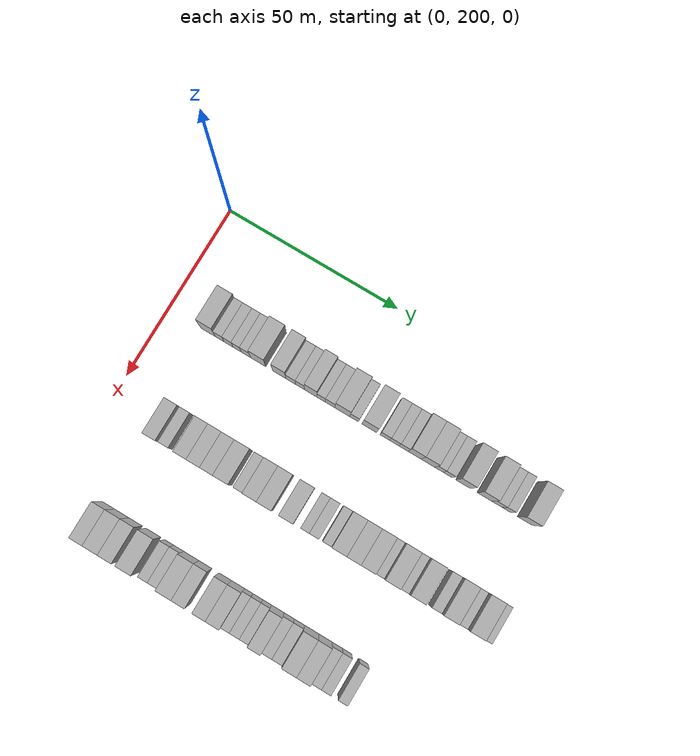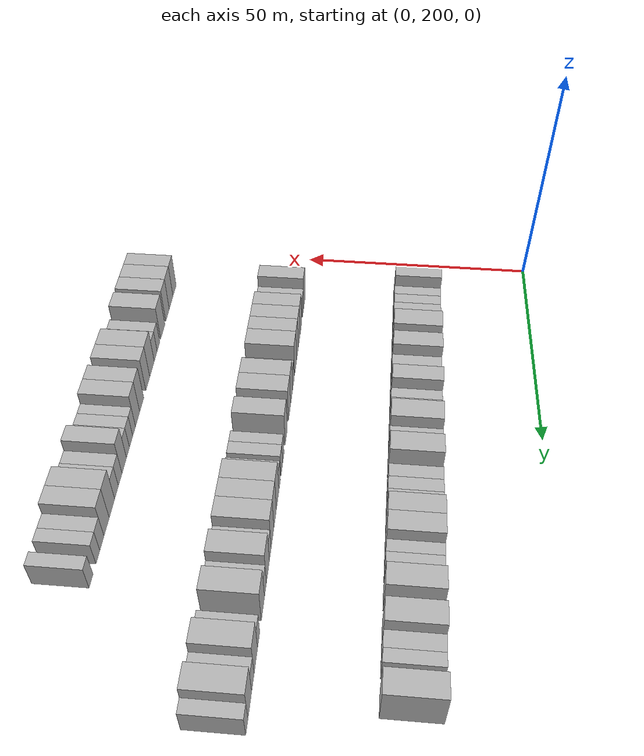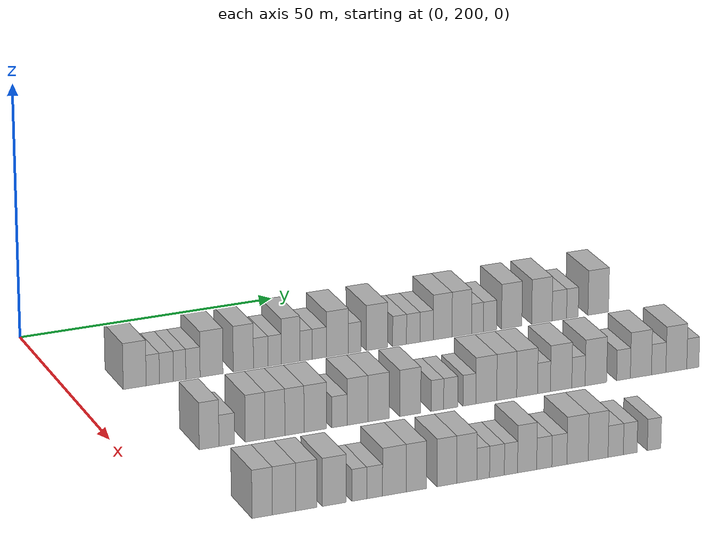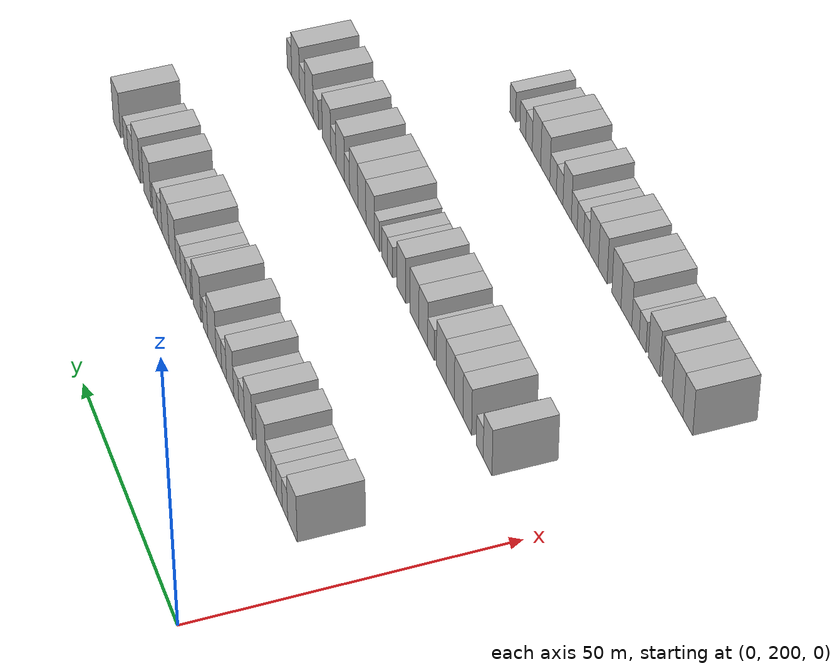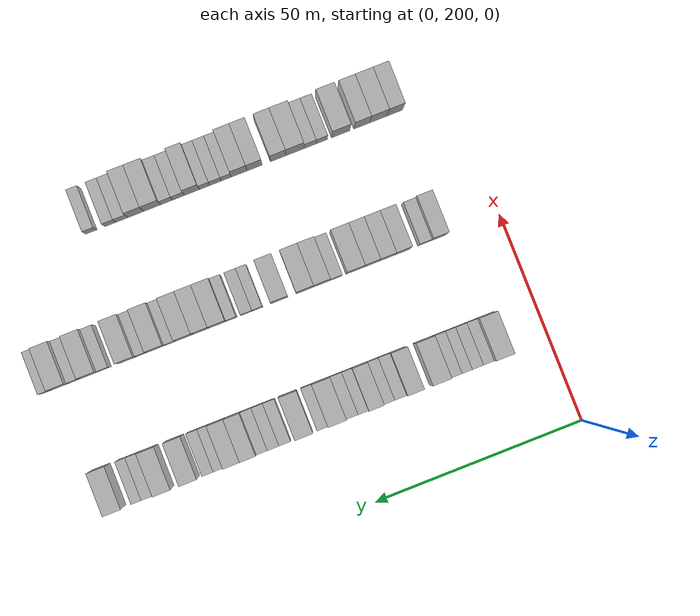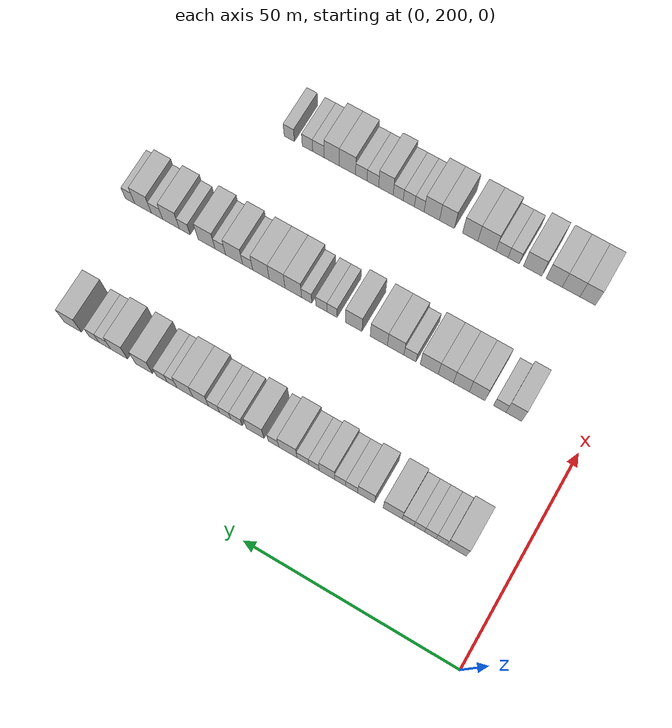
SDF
<sdf version="1.6">
 <world name="default">
  <model name="building_171">
   <static>1</static>
   <pose>25.0000 211.8962 0 0.000000 0.000000 0.000000</pose>
   <link name="link">
    <pose>0 0 4.50 0 0 0</pose>
    <collision name="collision"><geometry><box><size>10.0000 4.4105 9.0000</size></box></geometry></collision>
    <visual name="visual">
     <cast_shadows>0</cast_shadows>
     <geometry><box><size>10.0000 4.4105 9.0000</size></box></geometry>
     <material>
      <script>
       <uri>model://HANNAS_wall/materials/scripts</uri>
       <uri>model://HANNAS_wall/materials/textures</uri>
       <name>vrc/HANNAS_wall</name>
      </script>
     </material>
    </visual>
   </link>
  </model>
  <model name="building_172">
   <static>1</static>
   <pose>25.0000 215.3788 0 0.000000 0.000000 0.000000</pose>
   <link name="link">
    <pose>0 0 3.00 0 0 0</pose>
    <collision name="collision"><geometry><box><size>10.0000 2.5546 6.0000</size></box></geometry></collision>
    <visual name="visual">
     <cast_shadows>0</cast_shadows>
     <geometry><box><size>10.0000 2.5546 6.0000</size></box></geometry>
     <material>
      <script>
       <uri>model://HANNAS_wall/materials/scripts</uri>
       <uri>model://HANNAS_wall/materials/textures</uri>
       <name>vrc/HANNAS_wall</name>
      </script>
     </material>
    </visual>
   </link>
  </model>
  <model name="building_173">
   <static>1</static>
   <pose>25.0000 217.9968 0 0.000000 0.000000 0.000000</pose>
   <link name="link">
    <pose>0 0 3.00 0 0 0</pose>
    <collision name="collision"><geometry><box><size>10.0000 2.6815 6.0000</size></box></geometry></collision>
    <visual name="visual">
     <cast_shadows>0</cast_shadows>
     <geometry><box><size>10.0000 2.6815 6.0000</size></box></geometry>
     <material>
      <script>
       <uri>model://HANNAS_wall/materials/scripts</uri>
       <uri>model://HANNAS_wall/materials/textures</uri>
       <name>vrc/HANNAS_wall</name>
      </script>
     </material>
    </visual>
   </link>
  </model>
  <model name="building_174">
   <static>1</static>
   <pose>25.0000 220.5450 0 0.000000 0.000000 0.000000</pose>
   <link name="link">
    <pose>0 0 3.00 0 0 0</pose>
    <collision name="collision"><geometry><box><size>10.0000 2.4149 6.0000</size></box></geometry></collision>
    <visual name="visual">
     <cast_shadows>0</cast_shadows>
     <geometry><box><size>10.0000 2.4149 6.0000</size></box></geometry>
     <material>
      <script>
       <uri>model://HANNAS_wall/materials/scripts</uri>
       <uri>model://HANNAS_wall/materials/textures</uri>
       <name>vrc/HANNAS_wall</name>
      </script>
     </material>
    </visual>
   </link>
  </model>
  <model name="building_175">
   <static>1</static>
   <pose>25.0000 223.1354 0 0.000000 0.000000 0.000000</pose>
   <link name="link">
    <pose>0 0 3.00 0 0 0</pose>
    <collision name="collision"><geometry><box><size>10.0000 2.7659 6.0000</size></box></geometry></collision>
    <visual name="visual">
     <cast_shadows>0</cast_shadows>
     <geometry><box><size>10.0000 2.7659 6.0000</size></box></geometry>
     <material>
      <script>
       <uri>model://HANNAS_wall/materials/scripts</uri>
       <uri>model://HANNAS_wall/materials/textures</uri>
       <name>vrc/HANNAS_wall</name>
      </script>
     </material>
    </visual>
   </link>
  </model>
  <model name="building_176">
   <static>1</static>
   <pose>25.0000 226.7393 0 0.000000 0.000000 0.000000</pose>
   <link name="link">
    <pose>0 0 4.50 0 0 0</pose>
    <collision name="collision"><geometry><box><size>10.0000 4.4419 9.0000</size></box></geometry></collision>
    <visual name="visual">
     <cast_shadows>0</cast_shadows>
     <geometry><box><size>10.0000 4.4419 9.0000</size></box></geometry>
     <material>
      <script>
       <uri>model://HANNAS_wall/materials/scripts</uri>
       <uri>model://HANNAS_wall/materials/textures</uri>
       <name>vrc/HANNAS_wall</name>
      </script>
     </material>
    </visual>
   </link>
  </model>
  <model name="building_177">
   <static>1</static>
   <pose>25.0000 232.9341 0 0.000000 0.000000 0.000000</pose>
   <link name="link">
    <pose>0 0 4.50 0 0 0</pose>
    <collision name="collision"><geometry><box><size>10.0000 3.9477 9.0000</size></box></geometry></collision>
    <visual name="visual">
     <cast_shadows>0</cast_shadows>
     <geometry><box><size>10.0000 3.9477 9.0000</size></box></geometry>
     <material>
      <script>
       <uri>model://HANNAS_wall/materials/scripts</uri>
       <uri>model://HANNAS_wall/materials/textures</uri>
       <name>vrc/HANNAS_wall</name>
      </script>
     </material>
    </visual>
   </link>
  </model>
  <model name="building_178">
   <static>1</static>
   <pose>25.0000 236.3280 0 0.000000 0.000000 0.000000</pose>
   <link name="link">
    <pose>0 0 3.00 0 0 0</pose>
    <collision name="collision"><geometry><box><size>10.0000 2.8402 6.0000</size></box></geometry></collision>
    <visual name="visual">
     <cast_shadows>0</cast_shadows>
     <geometry><box><size>10.0000 2.8402 6.0000</size></box></geometry>
     <material>
      <script>
       <uri>model://HANNAS_wall/materials/scripts</uri>
       <uri>model://HANNAS_wall/materials/textures</uri>
       <name>vrc/HANNAS_wall</name>
      </script>
     </material>
    </visual>
   </link>
  </model>
  <model name="building_179">
   <static>1</static>
   <pose>25.0000 239.0620 0 0.000000 0.000000 0.000000</pose>
   <link name="link">
    <pose>0 0 3.00 0 0 0</pose>
    <collision name="collision"><geometry><box><size>10.0000 2.6278 6.0000</size></box></geometry></collision>
    <visual name="visual">
     <cast_shadows>0</cast_shadows>
     <geometry><box><size>10.0000 2.6278 6.0000</size></box></geometry>
     <material>
      <script>
       <uri>model://HANNAS_wall/materials/scripts</uri>
       <uri>model://HANNAS_wall/materials/textures</uri>
       <name>vrc/HANNAS_wall</name>
      </script>
     </material>
    </visual>
   </link>
  </model>
  <model name="building_180">
   <static>1</static>
   <pose>25.0000 242.1905 0 0.000000 0.000000 0.000000</pose>
   <link name="link">
    <pose>0 0 4.50 0 0 0</pose>
    <collision name="collision"><geometry><box><size>10.0000 3.6293 9.0000</size></box></geometry></collision>
    <visual name="visual">
     <cast_shadows>0</cast_shadows>
     <geometry><box><size>10.0000 3.6293 9.0000</size></box></geometry>
     <material>
      <script>
       <uri>model://HANNAS_wall/materials/scripts</uri>
       <uri>model://HANNAS_wall/materials/textures</uri>
       <name>vrc/HANNAS_wall</name>
      </script>
     </material>
    </visual>
   </link>
  </model>
  <model name="building_181">
   <static>1</static>
   <pose>25.0000 245.2287 0 0.000000 0.000000 0.000000</pose>
   <link name="link">
    <pose>0 0 3.00 0 0 0</pose>
    <collision name="collision"><geometry><box><size>10.0000 2.4471 6.0000</size></box></geometry></collision>
    <visual name="visual">
     <cast_shadows>0</cast_shadows>
     <geometry><box><size>10.0000 2.4471 6.0000</size></box></geometry>
     <material>
      <script>
       <uri>model://HANNAS_wall/materials/scripts</uri>
       <uri>model://HANNAS_wall/materials/textures</uri>
       <name>vrc/HANNAS_wall</name>
      </script>
     </material>
    </visual>
   </link>
  </model>
  <model name="building_182">
   <static>1</static>
   <pose>25.0000 247.8614 0 0.000000 0.000000 0.000000</pose>
   <link name="link">
    <pose>0 0 3.00 0 0 0</pose>
    <collision name="collision"><geometry><box><size>10.0000 2.8183 6.0000</size></box></geometry></collision>
    <visual name="visual">
     <cast_shadows>0</cast_shadows>
     <geometry><box><size>10.0000 2.8183 6.0000</size></box></geometry>
     <material>
      <script>
       <uri>model://HANNAS_wall/materials/scripts</uri>
       <uri>model://HANNAS_wall/materials/textures</uri>
       <name>vrc/HANNAS_wall</name>
      </script>
     </material>
    </visual>
   </link>
  </model>
  <model name="building_183">
   <static>1</static>
   <pose>25.0000 251.4510 0 0.000000 0.000000 0.000000</pose>
   <link name="link">
    <pose>0 0 4.50 0 0 0</pose>
    <collision name="collision"><geometry><box><size>10.0000 4.3609 9.0000</size></box></geometry></collision>
    <visual name="visual">
     <cast_shadows>0</cast_shadows>
     <geometry><box><size>10.0000 4.3609 9.0000</size></box></geometry>
     <material>
      <script>
       <uri>model://HANNAS_wall/materials/scripts</uri>
       <uri>model://HANNAS_wall/materials/textures</uri>
       <name>vrc/HANNAS_wall</name>
      </script>
     </material>
    </visual>
   </link>
  </model>
  <model name="building_184">
   <static>1</static>
   <pose>25.0000 254.9037 0 0.000000 0.000000 0.000000</pose>
   <link name="link">
    <pose>0 0 3.00 0 0 0</pose>
    <collision name="collision"><geometry><box><size>10.0000 2.5445 6.0000</size></box></geometry></collision>
    <visual name="visual">
     <cast_shadows>0</cast_shadows>
     <geometry><box><size>10.0000 2.5445 6.0000</size></box></geometry>
     <material>
      <script>
       <uri>model://HANNAS_wall/materials/scripts</uri>
       <uri>model://HANNAS_wall/materials/textures</uri>
       <name>vrc/HANNAS_wall</name>
      </script>
     </material>
    </visual>
   </link>
  </model>
  <model name="building_185">
   <static>1</static>
   <pose>25.0000 259.3108 0 0.000000 0.000000 0.000000</pose>
   <link name="link">
    <pose>0 0 4.50 0 0 0</pose>
    <collision name="collision"><geometry><box><size>10.0000 4.2695 9.0000</size></box></geometry></collision>
    <visual name="visual">
     <cast_shadows>0</cast_shadows>
     <geometry><box><size>10.0000 4.2695 9.0000</size></box></geometry>
     <material>
      <script>
       <uri>model://HANNAS_wall/materials/scripts</uri>
       <uri>model://HANNAS_wall/materials/textures</uri>
       <name>vrc/HANNAS_wall</name>
      </script>
     </material>
    </visual>
   </link>
  </model>
  <model name="building_186">
   <static>1</static>
   <pose>25.0000 263.8304 0 0.000000 0.000000 0.000000</pose>
   <link name="link">
    <pose>0 0 3.00 0 0 0</pose>
    <collision name="collision"><geometry><box><size>10.0000 2.7698 6.0000</size></box></geometry></collision>
    <visual name="visual">
     <cast_shadows>0</cast_shadows>
     <geometry><box><size>10.0000 2.7698 6.0000</size></box></geometry>
     <material>
      <script>
       <uri>model://HANNAS_wall/materials/scripts</uri>
       <uri>model://HANNAS_wall/materials/textures</uri>
       <name>vrc/HANNAS_wall</name>
      </script>
     </material>
    </visual>
   </link>
  </model>
  <model name="building_187">
   <static>1</static>
   <pose>25.0000 266.5804 0 0.000000 0.000000 0.000000</pose>
   <link name="link">
    <pose>0 0 3.00 0 0 0</pose>
    <collision name="collision"><geometry><box><size>10.0000 2.7300 6.0000</size></box></geometry></collision>
    <visual name="visual">
     <cast_shadows>0</cast_shadows>
     <geometry><box><size>10.0000 2.7300 6.0000</size></box></geometry>
     <material>
      <script>
       <uri>model://HANNAS_wall/materials/scripts</uri>
       <uri>model://HANNAS_wall/materials/textures</uri>
       <name>vrc/HANNAS_wall</name>
      </script>
     </material>
    </visual>
   </link>
  </model>
  <model name="building_188">
   <static>1</static>
   <pose>25.0000 269.2711 0 0.000000 0.000000 0.000000</pose>
   <link name="link">
    <pose>0 0 3.00 0 0 0</pose>
    <collision name="collision"><geometry><box><size>10.0000 2.6513 6.0000</size></box></geometry></collision>
    <visual name="visual">
     <cast_shadows>0</cast_shadows>
     <geometry><box><size>10.0000 2.6513 6.0000</size></box></geometry>
     <material>
      <script>
       <uri>model://HANNAS_wall/materials/scripts</uri>
       <uri>model://HANNAS_wall/materials/textures</uri>
       <name>vrc/HANNAS_wall</name>
      </script>
     </material>
    </visual>
   </link>
  </model>
  <model name="building_189">
   <static>1</static>
   <pose>25.0000 272.4869 0 0.000000 0.000000 0.000000</pose>
   <link name="link">
    <pose>0 0 4.50 0 0 0</pose>
    <collision name="collision"><geometry><box><size>10.0000 3.7804 9.0000</size></box></geometry></collision>
    <visual name="visual">
     <cast_shadows>0</cast_shadows>
     <geometry><box><size>10.0000 3.7804 9.0000</size></box></geometry>
     <material>
      <script>
       <uri>model://HANNAS_wall/materials/scripts</uri>
       <uri>model://HANNAS_wall/materials/textures</uri>
       <name>vrc/HANNAS_wall</name>
      </script>
     </material>
    </visual>
   </link>
  </model>
  <model name="building_190">
   <static>1</static>
   <pose>25.0000 276.3484 0 0.000000 0.000000 0.000000</pose>
   <link name="link">
    <pose>0 0 4.50 0 0 0</pose>
    <collision name="collision"><geometry><box><size>10.0000 3.9427 9.0000</size></box></geometry></collision>
    <visual name="visual">
     <cast_shadows>0</cast_shadows>
     <geometry><box><size>10.0000 3.9427 9.0000</size></box></geometry>
     <material>
      <script>
       <uri>model://HANNAS_wall/materials/scripts</uri>
       <uri>model://HANNAS_wall/materials/textures</uri>
       <name>vrc/HANNAS_wall</name>
      </script>
     </material>
    </visual>
   </link>
  </model>
  <model name="building_191">
   <static>1</static>
   <pose>25.0000 279.5289 0 0.000000 0.000000 0.000000</pose>
   <link name="link">
    <pose>0 0 3.00 0 0 0</pose>
    <collision name="collision"><geometry><box><size>10.0000 2.4182 6.0000</size></box></geometry></collision>
    <visual name="visual">
     <cast_shadows>0</cast_shadows>
     <geometry><box><size>10.0000 2.4182 6.0000</size></box></geometry>
     <material>
      <script>
       <uri>model://HANNAS_wall/materials/scripts</uri>
       <uri>model://HANNAS_wall/materials/textures</uri>
       <name>vrc/HANNAS_wall</name>
      </script>
     </material>
    </visual>
   </link>
  </model>
  <model name="building_192">
   <static>1</static>
   <pose>25.0000 282.0740 0 0.000000 0.000000 0.000000</pose>
   <link name="link">
    <pose>0 0 3.00 0 0 0</pose>
    <collision name="collision"><geometry><box><size>10.0000 2.6720 6.0000</size></box></geometry></collision>
    <visual name="visual">
     <cast_shadows>0</cast_shadows>
     <geometry><box><size>10.0000 2.6720 6.0000</size></box></geometry>
     <material>
      <script>
       <uri>model://HANNAS_wall/materials/scripts</uri>
       <uri>model://HANNAS_wall/materials/textures</uri>
       <name>vrc/HANNAS_wall</name>
      </script>
     </material>
    </visual>
   </link>
  </model>
  <model name="building_193">
   <static>1</static>
   <pose>25.0000 286.4903 0 0.000000 0.000000 0.000000</pose>
   <link name="link">
    <pose>0 0 4.50 0 0 0</pose>
    <collision name="collision"><geometry><box><size>10.0000 4.1606 9.0000</size></box></geometry></collision>
    <visual name="visual">
     <cast_shadows>0</cast_shadows>
     <geometry><box><size>10.0000 4.1606 9.0000</size></box></geometry>
     <material>
      <script>
       <uri>model://HANNAS_wall/materials/scripts</uri>
       <uri>model://HANNAS_wall/materials/textures</uri>
       <name>vrc/HANNAS_wall</name>
      </script>
     </material>
    </visual>
   </link>
  </model>
  <model name="building_194">
   <static>1</static>
   <pose>25.0000 292.6622 0 0.000000 0.000000 0.000000</pose>
   <link name="link">
    <pose>0 0 4.50 0 0 0</pose>
    <collision name="collision"><geometry><box><size>10.0000 4.1830 9.0000</size></box></geometry></collision>
    <visual name="visual">
     <cast_shadows>0</cast_shadows>
     <geometry><box><size>10.0000 4.1830 9.0000</size></box></geometry>
     <material>
      <script>
       <uri>model://HANNAS_wall/materials/scripts</uri>
       <uri>model://HANNAS_wall/materials/textures</uri>
       <name>vrc/HANNAS_wall</name>
      </script>
     </material>
    </visual>
   </link>
  </model>
  <model name="building_195">
   <static>1</static>
   <pose>25.0000 296.2423 0 0.000000 0.000000 0.000000</pose>
   <link name="link">
    <pose>0 0 3.00 0 0 0</pose>
    <collision name="collision"><geometry><box><size>10.0000 2.9772 6.0000</size></box></geometry></collision>
    <visual name="visual">
     <cast_shadows>0</cast_shadows>
     <geometry><box><size>10.0000 2.9772 6.0000</size></box></geometry>
     <material>
      <script>
       <uri>model://HANNAS_wall/materials/scripts</uri>
       <uri>model://HANNAS_wall/materials/textures</uri>
       <name>vrc/HANNAS_wall</name>
      </script>
     </material>
    </visual>
   </link>
  </model>
  <model name="building_196">
   <static>1</static>
   <pose>25.0000 298.9357 0 0.000000 0.000000 0.000000</pose>
   <link name="link">
    <pose>0 0 3.00 0 0 0</pose>
    <collision name="collision"><geometry><box><size>10.0000 2.4096 6.0000</size></box></geometry></collision>
    <visual name="visual">
     <cast_shadows>0</cast_shadows>
     <geometry><box><size>10.0000 2.4096 6.0000</size></box></geometry>
     <material>
      <script>
       <uri>model://HANNAS_wall/materials/scripts</uri>
       <uri>model://HANNAS_wall/materials/textures</uri>
       <name>vrc/HANNAS_wall</name>
      </script>
     </material>
    </visual>
   </link>
  </model>
  <model name="building_197">
   <static>1</static>
   <pose>25.0000 304.2707 0 0.000000 0.000000 0.000000</pose>
   <link name="link">
    <pose>0 0 4.50 0 0 0</pose>
    <collision name="collision"><geometry><box><size>10.0000 4.2606 9.0000</size></box></geometry></collision>
    <visual name="visual">
     <cast_shadows>0</cast_shadows>
     <geometry><box><size>10.0000 4.2606 9.0000</size></box></geometry>
     <material>
      <script>
       <uri>model://HANNAS_wall/materials/scripts</uri>
       <uri>model://HANNAS_wall/materials/textures</uri>
       <name>vrc/HANNAS_wall</name>
      </script>
     </material>
    </visual>
   </link>
  </model>
  <model name="building_414">
   <static>1</static>
   <pose>55.0000 215.0504 0 0.000000 0.000000 0.000000</pose>
   <link name="link">
    <pose>0 0 4.50 0 0 0</pose>
    <collision name="collision"><geometry><box><size>10.0000 3.7076 9.0000</size></box></geometry></collision>
    <visual name="visual">
     <cast_shadows>0</cast_shadows>
     <geometry><box><size>10.0000 3.7076 9.0000</size></box></geometry>
     <material>
      <script>
       <uri>model://HANNAS_wall/materials/scripts</uri>
       <uri>model://HANNAS_wall/materials/textures</uri>
       <name>vrc/HANNAS_wall</name>
      </script>
     </material>
    </visual>
   </link>
  </model>
  <model name="building_415">
   <static>1</static>
   <pose>55.0000 218.3742 0 0.000000 0.000000 0.000000</pose>
   <link name="link">
    <pose>0 0 3.00 0 0 0</pose>
    <collision name="collision"><geometry><box><size>10.0000 2.9399 6.0000</size></box></geometry></collision>
    <visual name="visual">
     <cast_shadows>0</cast_shadows>
     <geometry><box><size>10.0000 2.9399 6.0000</size></box></geometry>
     <material>
      <script>
       <uri>model://HANNAS_wall/materials/scripts</uri>
       <uri>model://HANNAS_wall/materials/textures</uri>
       <name>vrc/HANNAS_wall</name>
      </script>
     </material>
    </visual>
   </link>
  </model>
  <model name="building_416">
   <static>1</static>
   <pose>55.0000 223.7112 0 0.000000 0.000000 0.000000</pose>
   <link name="link">
    <pose>0 0 4.50 0 0 0</pose>
    <collision name="collision"><geometry><box><size>10.0000 3.7341 9.0000</size></box></geometry></collision>
    <visual name="visual">
     <cast_shadows>0</cast_shadows>
     <geometry><box><size>10.0000 3.7341 9.0000</size></box></geometry>
     <material>
      <script>
       <uri>model://HANNAS_wall/materials/scripts</uri>
       <uri>model://HANNAS_wall/materials/textures</uri>
       <name>vrc/HANNAS_wall</name>
      </script>
     </material>
    </visual>
   </link>
  </model>
  <model name="building_417">
   <static>1</static>
   <pose>55.0000 227.4649 0 0.000000 0.000000 0.000000</pose>
   <link name="link">
    <pose>0 0 4.50 0 0 0</pose>
    <collision name="collision"><geometry><box><size>10.0000 3.7732 9.0000</size></box></geometry></collision>
    <visual name="visual">
     <cast_shadows>0</cast_shadows>
     <geometry><box><size>10.0000 3.7732 9.0000</size></box></geometry>
     <material>
      <script>
       <uri>model://HANNAS_wall/materials/scripts</uri>
       <uri>model://HANNAS_wall/materials/textures</uri>
       <name>vrc/HANNAS_wall</name>
      </script>
     </material>
    </visual>
   </link>
  </model>
  <model name="building_418">
   <static>1</static>
   <pose>55.0000 231.1701 0 0.000000 0.000000 0.000000</pose>
   <link name="link">
    <pose>0 0 4.50 0 0 0</pose>
    <collision name="collision"><geometry><box><size>10.0000 3.6373 9.0000</size></box></geometry></collision>
    <visual name="visual">
     <cast_shadows>0</cast_shadows>
     <geometry><box><size>10.0000 3.6373 9.0000</size></box></geometry>
     <material>
      <script>
       <uri>model://HANNAS_wall/materials/scripts</uri>
       <uri>model://HANNAS_wall/materials/textures</uri>
       <name>vrc/HANNAS_wall</name>
      </script>
     </material>
    </visual>
   </link>
  </model>
  <model name="building_419">
   <static>1</static>
   <pose>55.0000 235.1419 0 0.000000 0.000000 0.000000</pose>
   <link name="link">
    <pose>0 0 4.50 0 0 0</pose>
    <collision name="collision"><geometry><box><size>10.0000 4.3064 9.0000</size></box></geometry></collision>
    <visual name="visual">
     <cast_shadows>0</cast_shadows>
     <geometry><box><size>10.0000 4.3064 9.0000</size></box></geometry>
     <material>
      <script>
       <uri>model://HANNAS_wall/materials/scripts</uri>
       <uri>model://HANNAS_wall/materials/textures</uri>
       <name>vrc/HANNAS_wall</name>
      </script>
     </material>
    </visual>
   </link>
  </model>
  <model name="building_420">
   <static>1</static>
   <pose>55.0000 239.7561 0 0.000000 0.000000 0.000000</pose>
   <link name="link">
    <pose>0 0 3.00 0 0 0</pose>
    <collision name="collision"><geometry><box><size>10.0000 2.9219 6.0000</size></box></geometry></collision>
    <visual name="visual">
     <cast_shadows>0</cast_shadows>
     <geometry><box><size>10.0000 2.9219 6.0000</size></box></geometry>
     <material>
      <script>
       <uri>model://HANNAS_wall/materials/scripts</uri>
       <uri>model://HANNAS_wall/materials/textures</uri>
       <name>vrc/HANNAS_wall</name>
      </script>
     </material>
    </visual>
   </link>
  </model>
  <model name="building_421">
   <static>1</static>
   <pose>55.0000 243.2069 0 0.000000 0.000000 0.000000</pose>
   <link name="link">
    <pose>0 0 4.50 0 0 0</pose>
    <collision name="collision"><geometry><box><size>10.0000 3.9797 9.0000</size></box></geometry></collision>
    <visual name="visual">
     <cast_shadows>0</cast_shadows>
     <geometry><box><size>10.0000 3.9797 9.0000</size></box></geometry>
     <material>
      <script>
       <uri>model://HANNAS_wall/materials/scripts</uri>
       <uri>model://HANNAS_wall/materials/textures</uri>
       <name>vrc/HANNAS_wall</name>
      </script>
     </material>
    </visual>
   </link>
  </model>
  <model name="building_422">
   <static>1</static>
   <pose>55.0000 247.2748 0 0.000000 0.000000 0.000000</pose>
   <link name="link">
    <pose>0 0 4.50 0 0 0</pose>
    <collision name="collision"><geometry><box><size>10.0000 4.1562 9.0000</size></box></geometry></collision>
    <visual name="visual">
     <cast_shadows>0</cast_shadows>
     <geometry><box><size>10.0000 4.1562 9.0000</size></box></geometry>
     <material>
      <script>
       <uri>model://HANNAS_wall/materials/scripts</uri>
       <uri>model://HANNAS_wall/materials/textures</uri>
       <name>vrc/HANNAS_wall</name>
      </script>
     </material>
    </visual>
   </link>
  </model>
  <model name="building_423">
   <static>1</static>
   <pose>55.0000 253.3871 0 0.000000 0.000000 0.000000</pose>
   <link name="link">
    <pose>0 0 4.50 0 0 0</pose>
    <collision name="collision"><geometry><box><size>10.0000 4.0684 9.0000</size></box></geometry></collision>
    <visual name="visual">
     <cast_shadows>0</cast_shadows>
     <geometry><box><size>10.0000 4.0684 9.0000</size></box></geometry>
     <material>
      <script>
       <uri>model://HANNAS_wall/materials/scripts</uri>
       <uri>model://HANNAS_wall/materials/textures</uri>
       <name>vrc/HANNAS_wall</name>
      </script>
     </material>
    </visual>
   </link>
  </model>
  <model name="building_424">
   <static>1</static>
   <pose>55.0000 258.6479 0 0.000000 0.000000 0.000000</pose>
   <link name="link">
    <pose>0 0 3.00 0 0 0</pose>
    <collision name="collision"><geometry><box><size>10.0000 2.4533 6.0000</size></box></geometry></collision>
    <visual name="visual">
     <cast_shadows>0</cast_shadows>
     <geometry><box><size>10.0000 2.4533 6.0000</size></box></geometry>
     <material>
      <script>
       <uri>model://HANNAS_wall/materials/scripts</uri>
       <uri>model://HANNAS_wall/materials/textures</uri>
       <name>vrc/HANNAS_wall</name>
      </script>
     </material>
    </visual>
   </link>
  </model>
  <model name="building_425">
   <static>1</static>
   <pose>55.0000 261.2574 0 0.000000 0.000000 0.000000</pose>
   <link name="link">
    <pose>0 0 3.00 0 0 0</pose>
    <collision name="collision"><geometry><box><size>10.0000 2.7658 6.0000</size></box></geometry></collision>
    <visual name="visual">
     <cast_shadows>0</cast_shadows>
     <geometry><box><size>10.0000 2.7658 6.0000</size></box></geometry>
     <material>
      <script>
       <uri>model://HANNAS_wall/materials/scripts</uri>
       <uri>model://HANNAS_wall/materials/textures</uri>
       <name>vrc/HANNAS_wall</name>
      </script>
     </material>
    </visual>
   </link>
  </model>
  <model name="building_426">
   <static>1</static>
   <pose>55.0000 264.8949 0 0.000000 0.000000 0.000000</pose>
   <link name="link">
    <pose>0 0 3.00 0 0 0</pose>
    <collision name="collision"><geometry><box><size>10.0000 2.5090 6.0000</size></box></geometry></collision>
    <visual name="visual">
     <cast_shadows>0</cast_shadows>
     <geometry><box><size>10.0000 2.5090 6.0000</size></box></geometry>
     <material>
      <script>
       <uri>model://HANNAS_wall/materials/scripts</uri>
       <uri>model://HANNAS_wall/materials/textures</uri>
       <name>vrc/HANNAS_wall</name>
      </script>
     </material>
    </visual>
   </link>
  </model>
  <model name="building_427">
   <static>1</static>
   <pose>55.0000 268.1947 0 0.000000 0.000000 0.000000</pose>
   <link name="link">
    <pose>0 0 4.50 0 0 0</pose>
    <collision name="collision"><geometry><box><size>10.0000 4.0907 9.0000</size></box></geometry></collision>
    <visual name="visual">
     <cast_shadows>0</cast_shadows>
     <geometry><box><size>10.0000 4.0907 9.0000</size></box></geometry>
     <material>
      <script>
       <uri>model://HANNAS_wall/materials/scripts</uri>
       <uri>model://HANNAS_wall/materials/textures</uri>
       <name>vrc/HANNAS_wall</name>
      </script>
     </material>
    </visual>
   </link>
  </model>
  <model name="building_428">
   <static>1</static>
   <pose>55.0000 272.2036 0 0.000000 0.000000 0.000000</pose>
   <link name="link">
    <pose>0 0 4.50 0 0 0</pose>
    <collision name="collision"><geometry><box><size>10.0000 3.9271 9.0000</size></box></geometry></collision>
    <visual name="visual">
     <cast_shadows>0</cast_shadows>
     <geometry><box><size>10.0000 3.9271 9.0000</size></box></geometry>
     <material>
      <script>
       <uri>model://HANNAS_wall/materials/scripts</uri>
       <uri>model://HANNAS_wall/materials/textures</uri>
       <name>vrc/HANNAS_wall</name>
      </script>
     </material>
    </visual>
   </link>
  </model>
  <model name="building_429">
   <static>1</static>
   <pose>55.0000 276.2278 0 0.000000 0.000000 0.000000</pose>
   <link name="link">
    <pose>0 0 4.50 0 0 0</pose>
    <collision name="collision"><geometry><box><size>10.0000 4.1213 9.0000</size></box></geometry></collision>
    <visual name="visual">
     <cast_shadows>0</cast_shadows>
     <geometry><box><size>10.0000 4.1213 9.0000</size></box></geometry>
     <material>
      <script>
       <uri>model://HANNAS_wall/materials/scripts</uri>
       <uri>model://HANNAS_wall/materials/textures</uri>
       <name>vrc/HANNAS_wall</name>
      </script>
     </material>
    </visual>
   </link>
  </model>
  <model name="building_430">
   <static>1</static>
   <pose>55.0000 279.5589 0 0.000000 0.000000 0.000000</pose>
   <link name="link">
    <pose>0 0 3.00 0 0 0</pose>
    <collision name="collision"><geometry><box><size>10.0000 2.5407 6.0000</size></box></geometry></collision>
    <visual name="visual">
     <cast_shadows>0</cast_shadows>
     <geometry><box><size>10.0000 2.5407 6.0000</size></box></geometry>
     <material>
      <script>
       <uri>model://HANNAS_wall/materials/scripts</uri>
       <uri>model://HANNAS_wall/materials/textures</uri>
       <name>vrc/HANNAS_wall</name>
      </script>
     </material>
    </visual>
   </link>
  </model>
  <model name="building_431">
   <static>1</static>
   <pose>55.0000 282.9599 0 0.000000 0.000000 0.000000</pose>
   <link name="link">
    <pose>0 0 4.50 0 0 0</pose>
    <collision name="collision"><geometry><box><size>10.0000 4.2614 9.0000</size></box></geometry></collision>
    <visual name="visual">
     <cast_shadows>0</cast_shadows>
     <geometry><box><size>10.0000 4.2614 9.0000</size></box></geometry>
     <material>
      <script>
       <uri>model://HANNAS_wall/materials/scripts</uri>
       <uri>model://HANNAS_wall/materials/textures</uri>
       <name>vrc/HANNAS_wall</name>
      </script>
     </material>
    </visual>
   </link>
  </model>
  <model name="building_432">
   <static>1</static>
   <pose>55.0000 286.4134 0 0.000000 0.000000 0.000000</pose>
   <link name="link">
    <pose>0 0 3.00 0 0 0</pose>
    <collision name="collision"><geometry><box><size>10.0000 2.6456 6.0000</size></box></geometry></collision>
    <visual name="visual">
     <cast_shadows>0</cast_shadows>
     <geometry><box><size>10.0000 2.6456 6.0000</size></box></geometry>
     <material>
      <script>
       <uri>model://HANNAS_wall/materials/scripts</uri>
       <uri>model://HANNAS_wall/materials/textures</uri>
       <name>vrc/HANNAS_wall</name>
      </script>
     </material>
    </visual>
   </link>
  </model>
  <model name="building_433">
   <static>1</static>
   <pose>55.0000 289.8872 0 0.000000 0.000000 0.000000</pose>
   <link name="link">
    <pose>0 0 4.50 0 0 0</pose>
    <collision name="collision"><geometry><box><size>10.0000 4.3019 9.0000</size></box></geometry></collision>
    <visual name="visual">
     <cast_shadows>0</cast_shadows>
     <geometry><box><size>10.0000 4.3019 9.0000</size></box></geometry>
     <material>
      <script>
       <uri>model://HANNAS_wall/materials/scripts</uri>
       <uri>model://HANNAS_wall/materials/textures</uri>
       <name>vrc/HANNAS_wall</name>
      </script>
     </material>
    </visual>
   </link>
  </model>
  <model name="building_434">
   <static>1</static>
   <pose>55.0000 295.4110 0 0.000000 0.000000 0.000000</pose>
   <link name="link">
    <pose>0 0 3.00 0 0 0</pose>
    <collision name="collision"><geometry><box><size>10.0000 2.7458 6.0000</size></box></geometry></collision>
    <visual name="visual">
     <cast_shadows>0</cast_shadows>
     <geometry><box><size>10.0000 2.7458 6.0000</size></box></geometry>
     <material>
      <script>
       <uri>model://HANNAS_wall/materials/scripts</uri>
       <uri>model://HANNAS_wall/materials/textures</uri>
       <name>vrc/HANNAS_wall</name>
      </script>
     </material>
    </visual>
   </link>
  </model>
  <model name="building_435">
   <static>1</static>
   <pose>55.0000 298.9033 0 0.000000 0.000000 0.000000</pose>
   <link name="link">
    <pose>0 0 4.50 0 0 0</pose>
    <collision name="collision"><geometry><box><size>10.0000 4.2386 9.0000</size></box></geometry></collision>
    <visual name="visual">
     <cast_shadows>0</cast_shadows>
     <geometry><box><size>10.0000 4.2386 9.0000</size></box></geometry>
     <material>
      <script>
       <uri>model://HANNAS_wall/materials/scripts</uri>
       <uri>model://HANNAS_wall/materials/textures</uri>
       <name>vrc/HANNAS_wall</name>
      </script>
     </material>
    </visual>
   </link>
  </model>
  <model name="building_436">
   <static>1</static>
   <pose>55.0000 302.4772 0 0.000000 0.000000 0.000000</pose>
   <link name="link">
    <pose>0 0 3.00 0 0 0</pose>
    <collision name="collision"><geometry><box><size>10.0000 2.9094 6.0000</size></box></geometry></collision>
    <visual name="visual">
     <cast_shadows>0</cast_shadows>
     <geometry><box><size>10.0000 2.9094 6.0000</size></box></geometry>
     <material>
      <script>
       <uri>model://HANNAS_wall/materials/scripts</uri>
       <uri>model://HANNAS_wall/materials/textures</uri>
       <name>vrc/HANNAS_wall</name>
      </script>
     </material>
    </visual>
   </link>
  </model>
  <model name="building_437">
   <static>1</static>
   <pose>55.0000 306.0453 0 0.000000 0.000000 0.000000</pose>
   <link name="link">
    <pose>0 0 4.50 0 0 0</pose>
    <collision name="collision"><geometry><box><size>10.0000 4.2267 9.0000</size></box></geometry></collision>
    <visual name="visual">
     <cast_shadows>0</cast_shadows>
     <geometry><box><size>10.0000 4.2267 9.0000</size></box></geometry>
     <material>
      <script>
       <uri>model://HANNAS_wall/materials/scripts</uri>
       <uri>model://HANNAS_wall/materials/textures</uri>
       <name>vrc/HANNAS_wall</name>
      </script>
     </material>
    </visual>
   </link>
  </model>
  <model name="building_438">
   <static>1</static>
   <pose>55.0000 309.3876 0 0.000000 0.000000 0.000000</pose>
   <link name="link">
    <pose>0 0 3.00 0 0 0</pose>
    <collision name="collision"><geometry><box><size>10.0000 2.4578 6.0000</size></box></geometry></collision>
    <visual name="visual">
     <cast_shadows>0</cast_shadows>
     <geometry><box><size>10.0000 2.4578 6.0000</size></box></geometry>
     <material>
      <script>
       <uri>model://HANNAS_wall/materials/scripts</uri>
       <uri>model://HANNAS_wall/materials/textures</uri>
       <name>vrc/HANNAS_wall</name>
      </script>
     </material>
    </visual>
   </link>
  </model>
  <model name="building_644">
   <static>1</static>
   <pose>85.0000 213.4947 0 0.000000 0.000000 0.000000</pose>
   <link name="link">
    <pose>0 0 4.50 0 0 0</pose>
    <collision name="collision"><geometry><box><size>10.0000 3.7204 9.0000</size></box></geometry></collision>
    <visual name="visual">
     <cast_shadows>0</cast_shadows>
     <geometry><box><size>10.0000 3.7204 9.0000</size></box></geometry>
     <material>
      <script>
       <uri>model://HANNAS_wall/materials/scripts</uri>
       <uri>model://HANNAS_wall/materials/textures</uri>
       <name>vrc/HANNAS_wall</name>
      </script>
     </material>
    </visual>
   </link>
  </model>
  <model name="building_645">
   <static>1</static>
   <pose>85.0000 217.4750 0 0.000000 0.000000 0.000000</pose>
   <link name="link">
    <pose>0 0 4.50 0 0 0</pose>
    <collision name="collision"><geometry><box><size>10.0000 4.2402 9.0000</size></box></geometry></collision>
    <visual name="visual">
     <cast_shadows>0</cast_shadows>
     <geometry><box><size>10.0000 4.2402 9.0000</size></box></geometry>
     <material>
      <script>
       <uri>model://HANNAS_wall/materials/scripts</uri>
       <uri>model://HANNAS_wall/materials/textures</uri>
       <name>vrc/HANNAS_wall</name>
      </script>
     </material>
    </visual>
   </link>
  </model>
  <model name="building_646">
   <static>1</static>
   <pose>85.0000 221.5497 0 0.000000 0.000000 0.000000</pose>
   <link name="link">
    <pose>0 0 4.50 0 0 0</pose>
    <collision name="collision"><geometry><box><size>10.0000 3.9093 9.0000</size></box></geometry></collision>
    <visual name="visual">
     <cast_shadows>0</cast_shadows>
     <geometry><box><size>10.0000 3.9093 9.0000</size></box></geometry>
     <material>
      <script>
       <uri>model://HANNAS_wall/materials/scripts</uri>
       <uri>model://HANNAS_wall/materials/textures</uri>
       <name>vrc/HANNAS_wall</name>
      </script>
     </material>
    </visual>
   </link>
  </model>
  <model name="building_647">
   <static>1</static>
   <pose>85.0000 226.7252 0 0.000000 0.000000 0.000000</pose>
   <link name="link">
    <pose>0 0 4.50 0 0 0</pose>
    <collision name="collision"><geometry><box><size>10.0000 4.4416 9.0000</size></box></geometry></collision>
    <visual name="visual">
     <cast_shadows>0</cast_shadows>
     <geometry><box><size>10.0000 4.4416 9.0000</size></box></geometry>
     <material>
      <script>
       <uri>model://HANNAS_wall/materials/scripts</uri>
       <uri>model://HANNAS_wall/materials/textures</uri>
       <name>vrc/HANNAS_wall</name>
      </script>
     </material>
    </visual>
   </link>
  </model>
  <model name="building_648">
   <static>1</static>
   <pose>85.0000 231.3195 0 0.000000 0.000000 0.000000</pose>
   <link name="link">
    <pose>0 0 3.00 0 0 0</pose>
    <collision name="collision"><geometry><box><size>10.0000 2.7470 6.0000</size></box></geometry></collision>
    <visual name="visual">
     <cast_shadows>0</cast_shadows>
     <geometry><box><size>10.0000 2.7470 6.0000</size></box></geometry>
     <material>
      <script>
       <uri>model://HANNAS_wall/materials/scripts</uri>
       <uri>model://HANNAS_wall/materials/textures</uri>
       <name>vrc/HANNAS_wall</name>
      </script>
     </material>
    </visual>
   </link>
  </model>
  <model name="building_649">
   <static>1</static>
   <pose>85.0000 234.1684 0 0.000000 0.000000 0.000000</pose>
   <link name="link">
    <pose>0 0 3.00 0 0 0</pose>
    <collision name="collision"><geometry><box><size>10.0000 2.9508 6.0000</size></box></geometry></collision>
    <visual name="visual">
     <cast_shadows>0</cast_shadows>
     <geometry><box><size>10.0000 2.9508 6.0000</size></box></geometry>
     <material>
      <script>
       <uri>model://HANNAS_wall/materials/scripts</uri>
       <uri>model://HANNAS_wall/materials/textures</uri>
       <name>vrc/HANNAS_wall</name>
      </script>
     </material>
    </visual>
   </link>
  </model>
  <model name="building_650">
   <static>1</static>
   <pose>85.0000 237.8527 0 0.000000 0.000000 0.000000</pose>
   <link name="link">
    <pose>0 0 4.50 0 0 0</pose>
    <collision name="collision"><geometry><box><size>10.0000 4.4177 9.0000</size></box></geometry></collision>
    <visual name="visual">
     <cast_shadows>0</cast_shadows>
     <geometry><box><size>10.0000 4.4177 9.0000</size></box></geometry>
     <material>
      <script>
       <uri>model://HANNAS_wall/materials/scripts</uri>
       <uri>model://HANNAS_wall/materials/textures</uri>
       <name>vrc/HANNAS_wall</name>
      </script>
     </material>
    </visual>
   </link>
  </model>
  <model name="building_651">
   <static>1</static>
   <pose>85.0000 241.9374 0 0.000000 0.000000 0.000000</pose>
   <link name="link">
    <pose>0 0 4.50 0 0 0</pose>
    <collision name="collision"><geometry><box><size>10.0000 3.7517 9.0000</size></box></geometry></collision>
    <visual name="visual">
     <cast_shadows>0</cast_shadows>
     <geometry><box><size>10.0000 3.7517 9.0000</size></box></geometry>
     <material>
      <script>
       <uri>model://HANNAS_wall/materials/scripts</uri>
       <uri>model://HANNAS_wall/materials/textures</uri>
       <name>vrc/HANNAS_wall</name>
      </script>
     </material>
    </visual>
   </link>
  </model>
  <model name="building_652">
   <static>1</static>
   <pose>85.0000 247.6548 0 0.000000 0.000000 0.000000</pose>
   <link name="link">
    <pose>0 0 4.50 0 0 0</pose>
    <collision name="collision"><geometry><box><size>10.0000 3.6833 9.0000</size></box></geometry></collision>
    <visual name="visual">
     <cast_shadows>0</cast_shadows>
     <geometry><box><size>10.0000 3.6833 9.0000</size></box></geometry>
     <material>
      <script>
       <uri>model://HANNAS_wall/materials/scripts</uri>
       <uri>model://HANNAS_wall/materials/textures</uri>
       <name>vrc/HANNAS_wall</name>
      </script>
     </material>
    </visual>
   </link>
  </model>
  <model name="building_653">
   <static>1</static>
   <pose>85.0000 251.3975 0 0.000000 0.000000 0.000000</pose>
   <link name="link">
    <pose>0 0 4.50 0 0 0</pose>
    <collision name="collision"><geometry><box><size>10.0000 3.8021 9.0000</size></box></geometry></collision>
    <visual name="visual">
     <cast_shadows>0</cast_shadows>
     <geometry><box><size>10.0000 3.8021 9.0000</size></box></geometry>
     <material>
      <script>
       <uri>model://HANNAS_wall/materials/scripts</uri>
       <uri>model://HANNAS_wall/materials/textures</uri>
       <name>vrc/HANNAS_wall</name>
      </script>
     </material>
    </visual>
   </link>
  </model>
  <model name="building_654">
   <static>1</static>
   <pose>85.0000 254.4992 0 0.000000 0.000000 0.000000</pose>
   <link name="link">
    <pose>0 0 3.00 0 0 0</pose>
    <collision name="collision"><geometry><box><size>10.0000 2.4013 6.0000</size></box></geometry></collision>
    <visual name="visual">
     <cast_shadows>0</cast_shadows>
     <geometry><box><size>10.0000 2.4013 6.0000</size></box></geometry>
     <material>
      <script>
       <uri>model://HANNAS_wall/materials/scripts</uri>
       <uri>model://HANNAS_wall/materials/textures</uri>
       <name>vrc/HANNAS_wall</name>
      </script>
     </material>
    </visual>
   </link>
  </model>
  <model name="building_655">
   <static>1</static>
   <pose>85.0000 257.0989 0 0.000000 0.000000 0.000000</pose>
   <link name="link">
    <pose>0 0 3.00 0 0 0</pose>
    <collision name="collision"><geometry><box><size>10.0000 2.7980 6.0000</size></box></geometry></collision>
    <visual name="visual">
     <cast_shadows>0</cast_shadows>
     <geometry><box><size>10.0000 2.7980 6.0000</size></box></geometry>
     <material>
      <script>
       <uri>model://HANNAS_wall/materials/scripts</uri>
       <uri>model://HANNAS_wall/materials/textures</uri>
       <name>vrc/HANNAS_wall</name>
      </script>
     </material>
    </visual>
   </link>
  </model>
  <model name="building_656">
   <static>1</static>
   <pose>85.0000 259.7514 0 0.000000 0.000000 0.000000</pose>
   <link name="link">
    <pose>0 0 3.00 0 0 0</pose>
    <collision name="collision"><geometry><box><size>10.0000 2.5072 6.0000</size></box></geometry></collision>
    <visual name="visual">
     <cast_shadows>0</cast_shadows>
     <geometry><box><size>10.0000 2.5072 6.0000</size></box></geometry>
     <material>
      <script>
       <uri>model://HANNAS_wall/materials/scripts</uri>
       <uri>model://HANNAS_wall/materials/textures</uri>
       <name>vrc/HANNAS_wall</name>
      </script>
     </material>
    </visual>
   </link>
  </model>
  <model name="building_657">
   <static>1</static>
   <pose>85.0000 262.8266 0 0.000000 0.000000 0.000000</pose>
   <link name="link">
    <pose>0 0 4.50 0 0 0</pose>
    <collision name="collision"><geometry><box><size>10.0000 3.6432 9.0000</size></box></geometry></collision>
    <visual name="visual">
     <cast_shadows>0</cast_shadows>
     <geometry><box><size>10.0000 3.6432 9.0000</size></box></geometry>
     <material>
      <script>
       <uri>model://HANNAS_wall/materials/scripts</uri>
       <uri>model://HANNAS_wall/materials/textures</uri>
       <name>vrc/HANNAS_wall</name>
      </script>
     </material>
    </visual>
   </link>
  </model>
  <model name="building_658">
   <static>1</static>
   <pose>85.0000 266.0953 0 0.000000 0.000000 0.000000</pose>
   <link name="link">
    <pose>0 0 3.00 0 0 0</pose>
    <collision name="collision"><geometry><box><size>10.0000 2.8941 6.0000</size></box></geometry></collision>
    <visual name="visual">
     <cast_shadows>0</cast_shadows>
     <geometry><box><size>10.0000 2.8941 6.0000</size></box></geometry>
     <material>
      <script>
       <uri>model://HANNAS_wall/materials/scripts</uri>
       <uri>model://HANNAS_wall/materials/textures</uri>
       <name>vrc/HANNAS_wall</name>
      </script>
     </material>
    </visual>
   </link>
  </model>
  <model name="building_659">
   <static>1</static>
   <pose>85.0000 268.9843 0 0.000000 0.000000 0.000000</pose>
   <link name="link">
    <pose>0 0 3.00 0 0 0</pose>
    <collision name="collision"><geometry><box><size>10.0000 2.8839 6.0000</size></box></geometry></collision>
    <visual name="visual">
     <cast_shadows>0</cast_shadows>
     <geometry><box><size>10.0000 2.8839 6.0000</size></box></geometry>
     <material>
      <script>
       <uri>model://HANNAS_wall/materials/scripts</uri>
       <uri>model://HANNAS_wall/materials/textures</uri>
       <name>vrc/HANNAS_wall</name>
      </script>
     </material>
    </visual>
   </link>
  </model>
  <model name="building_660">
   <static>1</static>
   <pose>85.0000 272.4731 0 0.000000 0.000000 0.000000</pose>
   <link name="link">
    <pose>0 0 4.50 0 0 0</pose>
    <collision name="collision"><geometry><box><size>10.0000 4.0939 9.0000</size></box></geometry></collision>
    <visual name="visual">
     <cast_shadows>0</cast_shadows>
     <geometry><box><size>10.0000 4.0939 9.0000</size></box></geometry>
     <material>
      <script>
       <uri>model://HANNAS_wall/materials/scripts</uri>
       <uri>model://HANNAS_wall/materials/textures</uri>
       <name>vrc/HANNAS_wall</name>
      </script>
     </material>
    </visual>
   </link>
  </model>
  <model name="building_661">
   <static>1</static>
   <pose>85.0000 276.4268 0 0.000000 0.000000 0.000000</pose>
   <link name="link">
    <pose>0 0 4.50 0 0 0</pose>
    <collision name="collision"><geometry><box><size>10.0000 3.8134 9.0000</size></box></geometry></collision>
    <visual name="visual">
     <cast_shadows>0</cast_shadows>
     <geometry><box><size>10.0000 3.8134 9.0000</size></box></geometry>
     <material>
      <script>
       <uri>model://HANNAS_wall/materials/scripts</uri>
       <uri>model://HANNAS_wall/materials/textures</uri>
       <name>vrc/HANNAS_wall</name>
      </script>
     </material>
    </visual>
   </link>
  </model>
  <model name="building_662">
   <static>1</static>
   <pose>85.0000 279.8060 0 0.000000 0.000000 0.000000</pose>
   <link name="link">
    <pose>0 0 3.00 0 0 0</pose>
    <collision name="collision"><geometry><box><size>10.0000 2.9450 6.0000</size></box></geometry></collision>
    <visual name="visual">
     <cast_shadows>0</cast_shadows>
     <geometry><box><size>10.0000 2.9450 6.0000</size></box></geometry>
     <material>
      <script>
       <uri>model://HANNAS_wall/materials/scripts</uri>
       <uri>model://HANNAS_wall/materials/textures</uri>
       <name>vrc/HANNAS_wall</name>
      </script>
     </material>
    </visual>
   </link>
  </model>
  <model name="building_663">
   <static>1</static>
   <pose>85.0000 282.6062 0 0.000000 0.000000 0.000000</pose>
   <link name="link">
    <pose>0 0 3.00 0 0 0</pose>
    <collision name="collision"><geometry><box><size>10.0000 2.6553 6.0000</size></box></geometry></collision>
    <visual name="visual">
     <cast_shadows>0</cast_shadows>
     <geometry><box><size>10.0000 2.6553 6.0000</size></box></geometry>
     <material>
      <script>
       <uri>model://HANNAS_wall/materials/scripts</uri>
       <uri>model://HANNAS_wall/materials/textures</uri>
       <name>vrc/HANNAS_wall</name>
      </script>
     </material>
    </visual>
   </link>
  </model>
  <model name="building_664">
   <static>1</static>
   <pose>85.0000 287.2456 0 0.000000 0.000000 0.000000</pose>
   <link name="link">
    <pose>0 0 3.00 0 0 0</pose>
    <collision name="collision"><geometry><box><size>10.0000 2.6234 6.0000</size></box></geometry></collision>
    <visual name="visual">
     <cast_shadows>0</cast_shadows>
     <geometry><box><size>10.0000 2.6234 6.0000</size></box></geometry>
     <material>
      <script>
       <uri>model://HANNAS_wall/materials/scripts</uri>
       <uri>model://HANNAS_wall/materials/textures</uri>
       <name>vrc/HANNAS_wall</name>
      </script>
     </material>
    </visual>
   </link>
  </model>
 </world>
</sdf>
